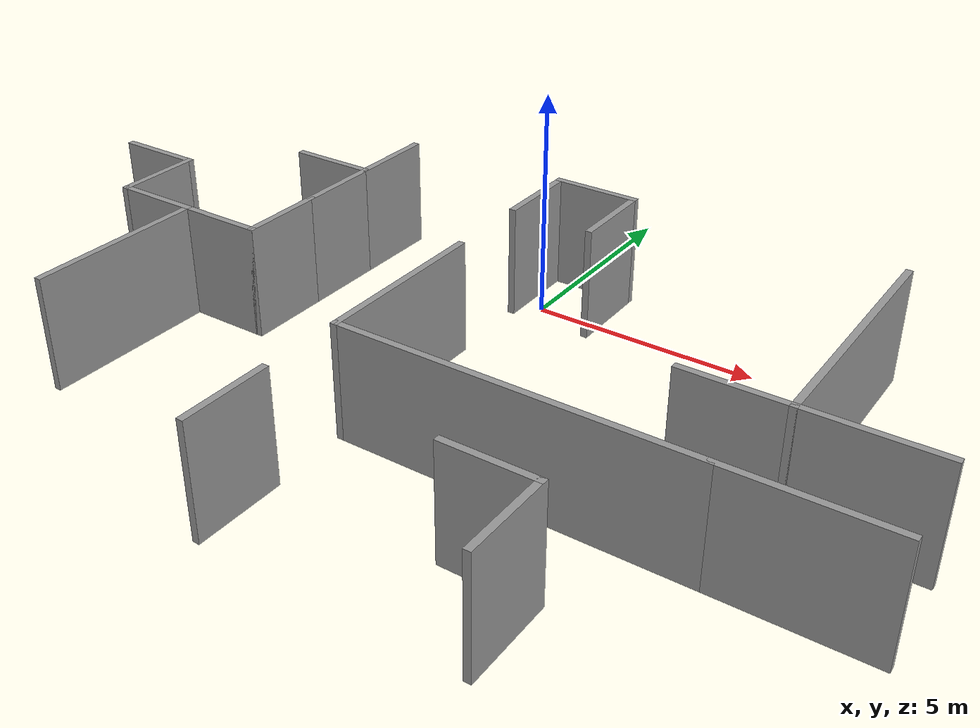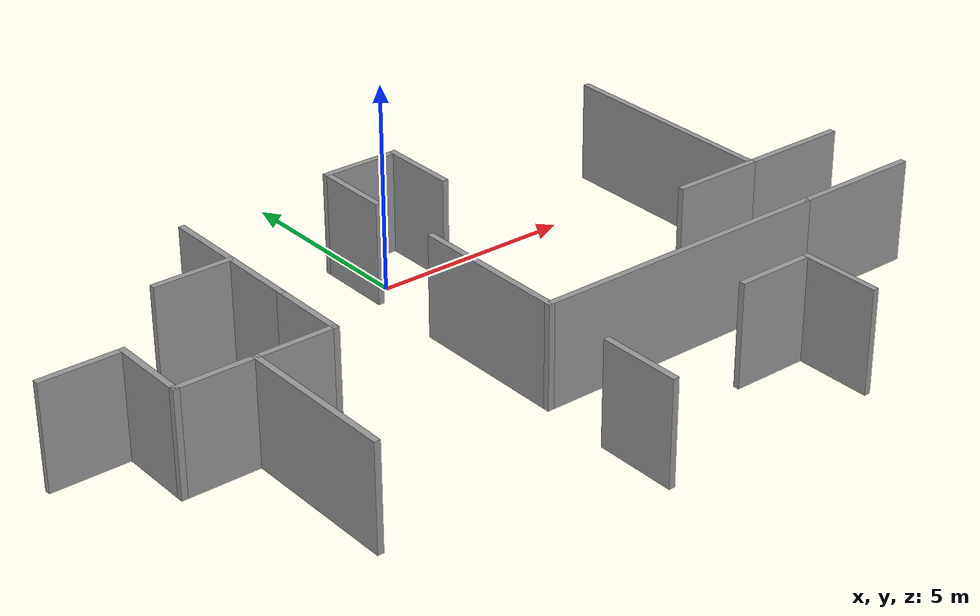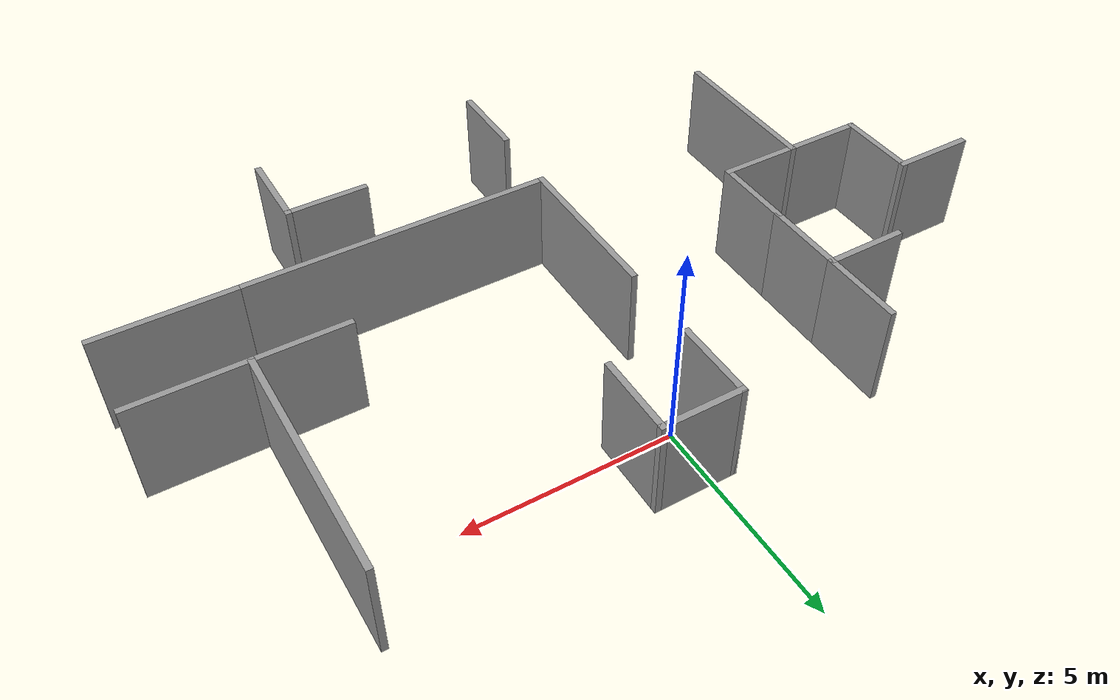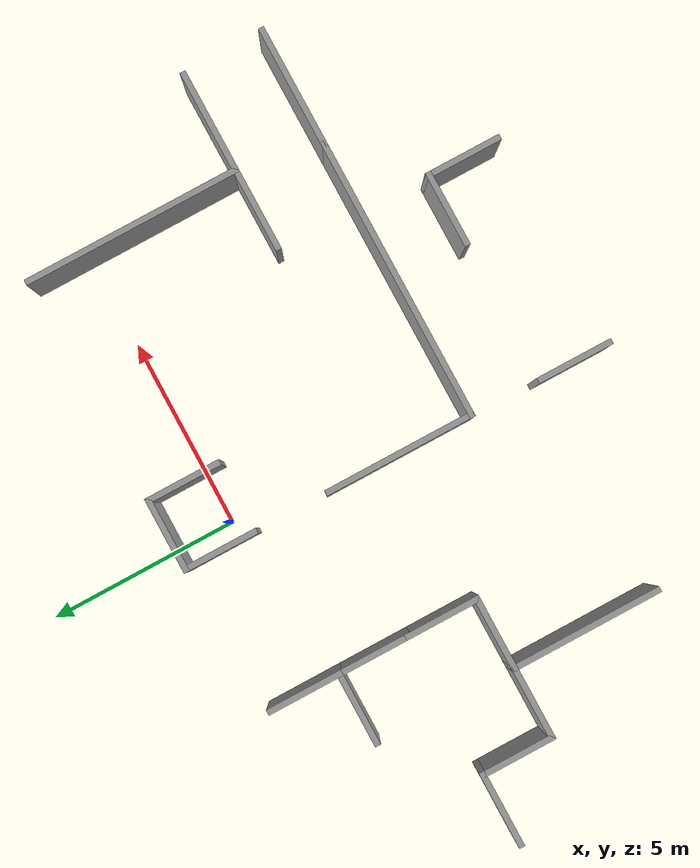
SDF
<sdf version="1.6">
 <model name="maze_new">
  <link name="Wall_11">
   <pose>-6.25 -6.22653 0 0 -0 1.5708</pose>
   <visual name="Wall_11_Visual">
    <pose>0 0 1.25 0 -0 0</pose>
    <geometry><box><size>4 0.15 2.5</size></box></geometry>
    <material>
     <script><uri>file://media/materials/scripts/gazebo.material</uri><name>Gazebo/Grey</name></script>
     <ambient>1 1 1 1</ambient>
     <diffuse>0.7 0.7 0.7 1</diffuse>
     <specular>0.01 0.01 0.01 1</specular>
     <emissive>0 0 0 1</emissive>
    </material>
   </visual>
   <collision name="Wall_11_Collision">
    <pose>0 0 1.25 0 -0 0</pose>
    <geometry><box><size>4 0.15 2.5</size></box></geometry>
    <surface>
     <friction>
      <ode><mu>1</mu><mu2>1</mu2><fdir1>0 0 0</fdir1><slip1>0</slip1><slip2>0</slip2></ode>
      <torsional>
       <coefficient>1</coefficient>
       <patch_radius>0</patch_radius>
       <surface_radius>0</surface_radius>
       <use_patch_radius>1</use_patch_radius>
       <ode><slip>0</slip></ode>
      </torsional>
     </friction>
     <bounce><restitution_coefficient>0</restitution_coefficient><threshold>1e+06</threshold></bounce>
     <contact>
      <collide_without_contact>0</collide_without_contact>
      <collide_without_contact_bitmask>1</collide_without_contact_bitmask>
      <collide_bitmask>1</collide_bitmask>
      <ode>
       <soft_cfm>0</soft_cfm>
       <soft_erp>0.2</soft_erp>
       <kp>1e+13</kp>
       <kd>1</kd>
       <max_vel>0.01</max_vel>
       <min_depth>0</min_depth>
      </ode>
      <bullet>
       <split_impulse>1</split_impulse>
       <split_impulse_penetration_threshold>-0.01</split_impulse_penetration_threshold>
       <soft_cfm>0</soft_cfm>
       <soft_erp>0.2</soft_erp>
       <kp>1e+13</kp>
       <kd>1</kd>
      </bullet>
     </contact>
    </surface>
   </collision>
  </link>
  <link name="Wall_125">
   <pose>6.25 -4.1229 0 0 -0 0</pose>
   <visual name="Wall_125_Visual">
    <pose>0 0 1.25 0 -0 0</pose>
    <geometry><box><size>2.25 0.15 2.5</size></box></geometry>
    <material>
     <script><uri>file://media/materials/scripts/gazebo.material</uri><name>Gazebo/Grey</name></script>
     <ambient>1 1 1 1</ambient>
     <diffuse>0.7 0.7 0.7 1</diffuse>
     <specular>0.01 0.01 0.01 1</specular>
     <emissive>0 0 0 1</emissive>
    </material>
   </visual>
   <collision name="Wall_125_Collision">
    <pose>0 0 1.25 0 -0 0</pose>
    <geometry><box><size>2.25 0.15 2.5</size></box></geometry>
    <surface>
     <friction>
      <ode><mu>1</mu><mu2>1</mu2><fdir1>0 0 0</fdir1><slip1>0</slip1><slip2>0</slip2></ode>
      <torsional>
       <coefficient>1</coefficient>
       <patch_radius>0</patch_radius>
       <surface_radius>0</surface_radius>
       <use_patch_radius>1</use_patch_radius>
       <ode><slip>0</slip></ode>
      </torsional>
     </friction>
     <bounce><restitution_coefficient>0</restitution_coefficient><threshold>1e+06</threshold></bounce>
     <contact>
      <collide_without_contact>0</collide_without_contact>
      <collide_without_contact_bitmask>1</collide_without_contact_bitmask>
      <collide_bitmask>1</collide_bitmask>
      <ode>
       <soft_cfm>0</soft_cfm>
       <soft_erp>0.2</soft_erp>
       <kp>1e+13</kp>
       <kd>1</kd>
       <max_vel>0.01</max_vel>
       <min_depth>0</min_depth>
      </ode>
      <bullet>
       <split_impulse>1</split_impulse>
       <split_impulse_penetration_threshold>-0.01</split_impulse_penetration_threshold>
       <soft_cfm>0</soft_cfm>
       <soft_erp>0.2</soft_erp>
       <kp>1e+13</kp>
       <kd>1</kd>
      </bullet>
     </contact>
    </surface>
   </collision>
  </link>
  <link name="Wall_126">
   <pose>7.3 -1.3229 0 0 -0 1.5708</pose>
   <visual name="Wall_126_Visual">
    <pose>0 0 1.25 0 -0 0</pose>
    <geometry><box><size>5.75 0.15 2.5</size></box></geometry>
    <material>
     <script><uri>file://media/materials/scripts/gazebo.material</uri><name>Gazebo/Grey</name></script>
     <ambient>1 1 1 1</ambient>
     <diffuse>0.7 0.7 0.7 1</diffuse>
     <specular>0.01 0.01 0.01 1</specular>
     <emissive>0 0 0 1</emissive>
    </material>
   </visual>
   <collision name="Wall_126_Collision">
    <pose>0 0 1.25 0 -0 0</pose>
    <geometry><box><size>5.75 0.15 2.5</size></box></geometry>
    <surface>
     <friction>
      <ode><mu>1</mu><mu2>1</mu2><fdir1>0 0 0</fdir1><slip1>0</slip1><slip2>0</slip2></ode>
      <torsional>
       <coefficient>1</coefficient>
       <patch_radius>0</patch_radius>
       <surface_radius>0</surface_radius>
       <use_patch_radius>1</use_patch_radius>
       <ode><slip>0</slip></ode>
      </torsional>
     </friction>
     <bounce><restitution_coefficient>0</restitution_coefficient><threshold>1e+06</threshold></bounce>
     <contact>
      <collide_without_contact>0</collide_without_contact>
      <collide_without_contact_bitmask>1</collide_without_contact_bitmask>
      <collide_bitmask>1</collide_bitmask>
      <ode>
       <soft_cfm>0</soft_cfm>
       <soft_erp>0.2</soft_erp>
       <kp>1e+13</kp>
       <kd>1</kd>
       <max_vel>0.01</max_vel>
       <min_depth>0</min_depth>
      </ode>
      <bullet>
       <split_impulse>1</split_impulse>
       <split_impulse_penetration_threshold>-0.01</split_impulse_penetration_threshold>
       <soft_cfm>0</soft_cfm>
       <soft_erp>0.2</soft_erp>
       <kp>1e+13</kp>
       <kd>1</kd>
      </bullet>
     </contact>
    </surface>
   </collision>
  </link>
  <link name="Wall_128">
   <pose>8.6 -4.1229 0 0 -0 0</pose>
   <visual name="Wall_128_Visual">
    <pose>0 0 1.25 0 -0 0</pose>
    <geometry><box><size>2.75 0.15 2.5</size></box></geometry>
    <material>
     <script><uri>file://media/materials/scripts/gazebo.material</uri><name>Gazebo/Grey</name></script>
     <ambient>1 1 1 1</ambient>
     <diffuse>0.7 0.7 0.7 1</diffuse>
     <specular>0.01 0.01 0.01 1</specular>
     <emissive>0 0 0 1</emissive>
    </material>
   </visual>
   <collision name="Wall_128_Collision">
    <pose>0 0 1.25 0 -0 0</pose>
    <geometry><box><size>2.75 0.15 2.5</size></box></geometry>
    <surface>
     <friction>
      <ode><mu>1</mu><mu2>1</mu2><fdir1>0 0 0</fdir1><slip1>0</slip1><slip2>0</slip2></ode>
      <torsional>
       <coefficient>1</coefficient>
       <patch_radius>0</patch_radius>
       <surface_radius>0</surface_radius>
       <use_patch_radius>1</use_patch_radius>
       <ode><slip>0</slip></ode>
      </torsional>
     </friction>
     <bounce><restitution_coefficient>0</restitution_coefficient><threshold>1e+06</threshold></bounce>
     <contact>
      <collide_without_contact>0</collide_without_contact>
      <collide_without_contact_bitmask>1</collide_without_contact_bitmask>
      <collide_bitmask>1</collide_bitmask>
      <ode>
       <soft_cfm>0</soft_cfm>
       <soft_erp>0.2</soft_erp>
       <kp>1e+13</kp>
       <kd>1</kd>
       <max_vel>0.01</max_vel>
       <min_depth>0</min_depth>
      </ode>
      <bullet>
       <split_impulse>1</split_impulse>
       <split_impulse_penetration_threshold>-0.01</split_impulse_penetration_threshold>
       <soft_cfm>0</soft_cfm>
       <soft_erp>0.2</soft_erp>
       <kp>1e+13</kp>
       <kd>1</kd>
      </bullet>
     </contact>
    </surface>
   </collision>
  </link>
  <link name="Wall_13">
   <pose>-7.175 -4.30153 0 0 -0 3.14159</pose>
   <visual name="Wall_13_Visual">
    <pose>0 0 1.25 0 -0 0</pose>
    <geometry><box><size>2 0.15 2.5</size></box></geometry>
    <material>
     <script><uri>file://media/materials/scripts/gazebo.material</uri><name>Gazebo/Grey</name></script>
     <ambient>1 1 1 1</ambient>
     <diffuse>0.7 0.7 0.7 1</diffuse>
     <specular>0.01 0.01 0.01 1</specular>
     <emissive>0 0 0 1</emissive>
    </material>
   </visual>
   <collision name="Wall_13_Collision">
    <pose>0 0 1.25 0 -0 0</pose>
    <geometry><box><size>2 0.15 2.5</size></box></geometry>
    <surface>
     <friction>
      <ode><mu>1</mu><mu2>1</mu2><fdir1>0 0 0</fdir1><slip1>0</slip1><slip2>0</slip2></ode>
      <torsional>
       <coefficient>1</coefficient>
       <patch_radius>0</patch_radius>
       <surface_radius>0</surface_radius>
       <use_patch_radius>1</use_patch_radius>
       <ode><slip>0</slip></ode>
      </torsional>
     </friction>
     <bounce><restitution_coefficient>0</restitution_coefficient><threshold>1e+06</threshold></bounce>
     <contact>
      <collide_without_contact>0</collide_without_contact>
      <collide_without_contact_bitmask>1</collide_without_contact_bitmask>
      <collide_bitmask>1</collide_bitmask>
      <ode>
       <soft_cfm>0</soft_cfm>
       <soft_erp>0.2</soft_erp>
       <kp>1e+13</kp>
       <kd>1</kd>
       <max_vel>0.01</max_vel>
       <min_depth>0</min_depth>
      </ode>
      <bullet>
       <split_impulse>1</split_impulse>
       <split_impulse_penetration_threshold>-0.01</split_impulse_penetration_threshold>
       <soft_cfm>0</soft_cfm>
       <soft_erp>0.2</soft_erp>
       <kp>1e+13</kp>
       <kd>1</kd>
      </bullet>
     </contact>
    </surface>
   </collision>
  </link>
  <link name="Wall_14">
   <pose>-8.1 -3.37653 0 0 -0 1.5708</pose>
   <visual name="Wall_14_Visual">
    <pose>0 0 1.25 0 -0 0</pose>
    <geometry><box><size>2 0.15 2.5</size></box></geometry>
    <material>
     <script><uri>file://media/materials/scripts/gazebo.material</uri><name>Gazebo/Grey</name></script>
     <ambient>1 1 1 1</ambient>
     <diffuse>0.7 0.7 0.7 1</diffuse>
     <specular>0.01 0.01 0.01 1</specular>
     <emissive>0 0 0 1</emissive>
    </material>
   </visual>
   <collision name="Wall_14_Collision">
    <pose>0 0 1.25 0 -0 0</pose>
    <geometry><box><size>2 0.15 2.5</size></box></geometry>
    <surface>
     <friction>
      <ode><mu>1</mu><mu2>1</mu2><fdir1>0 0 0</fdir1><slip1>0</slip1><slip2>0</slip2></ode>
      <torsional>
       <coefficient>1</coefficient>
       <patch_radius>0</patch_radius>
       <surface_radius>0</surface_radius>
       <use_patch_radius>1</use_patch_radius>
       <ode><slip>0</slip></ode>
      </torsional>
     </friction>
     <bounce><restitution_coefficient>0</restitution_coefficient><threshold>1e+06</threshold></bounce>
     <contact>
      <collide_without_contact>0</collide_without_contact>
      <collide_without_contact_bitmask>1</collide_without_contact_bitmask>
      <collide_bitmask>1</collide_bitmask>
      <ode>
       <soft_cfm>0</soft_cfm>
       <soft_erp>0.2</soft_erp>
       <kp>1e+13</kp>
       <kd>1</kd>
       <max_vel>0.01</max_vel>
       <min_depth>0</min_depth>
      </ode>
      <bullet>
       <split_impulse>1</split_impulse>
       <split_impulse_penetration_threshold>-0.01</split_impulse_penetration_threshold>
       <soft_cfm>0</soft_cfm>
       <soft_erp>0.2</soft_erp>
       <kp>1e+13</kp>
       <kd>1</kd>
      </bullet>
     </contact>
    </surface>
   </collision>
  </link>
  <link name="Wall_15">
   <pose>-9.025 -2.45153 0 0 -0 3.14159</pose>
   <visual name="Wall_15_Visual">
    <pose>0 0 1.25 0 -0 0</pose>
    <geometry><box><size>2 0.15 2.5</size></box></geometry>
    <material>
     <script><uri>file://media/materials/scripts/gazebo.material</uri><name>Gazebo/Grey</name></script>
     <ambient>1 1 1 1</ambient>
     <diffuse>0.7 0.7 0.7 1</diffuse>
     <specular>0.01 0.01 0.01 1</specular>
     <emissive>0 0 0 1</emissive>
    </material>
   </visual>
   <collision name="Wall_15_Collision">
    <pose>0 0 1.25 0 -0 0</pose>
    <geometry><box><size>2 0.15 2.5</size></box></geometry>
    <surface>
     <friction>
      <ode><mu>1</mu><mu2>1</mu2><fdir1>0 0 0</fdir1><slip1>0</slip1><slip2>0</slip2></ode>
      <torsional>
       <coefficient>1</coefficient>
       <patch_radius>0</patch_radius>
       <surface_radius>0</surface_radius>
       <use_patch_radius>1</use_patch_radius>
       <ode><slip>0</slip></ode>
      </torsional>
     </friction>
     <bounce><restitution_coefficient>0</restitution_coefficient><threshold>1e+06</threshold></bounce>
     <contact>
      <collide_without_contact>0</collide_without_contact>
      <collide_without_contact_bitmask>1</collide_without_contact_bitmask>
      <collide_bitmask>1</collide_bitmask>
      <ode>
       <soft_cfm>0</soft_cfm>
       <soft_erp>0.2</soft_erp>
       <kp>1e+13</kp>
       <kd>1</kd>
       <max_vel>0.01</max_vel>
       <min_depth>0</min_depth>
      </ode>
      <bullet>
       <split_impulse>1</split_impulse>
       <split_impulse_penetration_threshold>-0.01</split_impulse_penetration_threshold>
       <soft_cfm>0</soft_cfm>
       <soft_erp>0.2</soft_erp>
       <kp>1e+13</kp>
       <kd>1</kd>
      </bullet>
     </contact>
    </surface>
   </collision>
  </link>
  <link name="Wall_19">
   <pose>-5.325 -4.30153 0 0 -0 0</pose>
   <visual name="Wall_19_Visual">
    <pose>0 0 1.25 0 -0 0</pose>
    <geometry><box><size>2 0.15 2.5</size></box></geometry>
    <material>
     <script><uri>file://media/materials/scripts/gazebo.material</uri><name>Gazebo/Grey</name></script>
     <ambient>1 1 1 1</ambient>
     <diffuse>0.7 0.7 0.7 1</diffuse>
     <specular>0.01 0.01 0.01 1</specular>
     <emissive>0 0 0 1</emissive>
    </material>
   </visual>
   <collision name="Wall_19_Collision">
    <pose>0 0 1.25 0 -0 0</pose>
    <geometry><box><size>2 0.15 2.5</size></box></geometry>
    <surface>
     <friction>
      <ode><mu>1</mu><mu2>1</mu2><fdir1>0 0 0</fdir1><slip1>0</slip1><slip2>0</slip2></ode>
      <torsional>
       <coefficient>1</coefficient>
       <patch_radius>0</patch_radius>
       <surface_radius>0</surface_radius>
       <use_patch_radius>1</use_patch_radius>
       <ode><slip>0</slip></ode>
      </torsional>
     </friction>
     <bounce><restitution_coefficient>0</restitution_coefficient><threshold>1e+06</threshold></bounce>
     <contact>
      <collide_without_contact>0</collide_without_contact>
      <collide_without_contact_bitmask>1</collide_without_contact_bitmask>
      <collide_bitmask>1</collide_bitmask>
      <ode>
       <soft_cfm>0</soft_cfm>
       <soft_erp>0.2</soft_erp>
       <kp>1e+13</kp>
       <kd>1</kd>
       <max_vel>0.01</max_vel>
       <min_depth>0</min_depth>
      </ode>
      <bullet>
       <split_impulse>1</split_impulse>
       <split_impulse_penetration_threshold>-0.01</split_impulse_penetration_threshold>
       <soft_cfm>0</soft_cfm>
       <soft_erp>0.2</soft_erp>
       <kp>1e+13</kp>
       <kd>1</kd>
      </bullet>
     </contact>
    </surface>
   </collision>
  </link>
  <link name="Wall_20">
   <pose>-4.4 -3.37653 0 0 -0 1.5708</pose>
   <visual name="Wall_20_Visual">
    <pose>0 0 1.25 0 -0 0</pose>
    <geometry><box><size>2 0.15 2.5</size></box></geometry>
    <material>
     <script><uri>file://media/materials/scripts/gazebo.material</uri><name>Gazebo/Grey</name></script>
     <ambient>1 1 1 1</ambient>
     <diffuse>0.7 0.7 0.7 1</diffuse>
     <specular>0.01 0.01 0.01 1</specular>
     <emissive>0 0 0 1</emissive>
    </material>
   </visual>
   <collision name="Wall_20_Collision">
    <pose>0 0 1.25 0 -0 0</pose>
    <geometry><box><size>2 0.15 2.5</size></box></geometry>
    <surface>
     <friction>
      <ode><mu>1</mu><mu2>1</mu2><fdir1>0 0 0</fdir1><slip1>0</slip1><slip2>0</slip2></ode>
      <torsional>
       <coefficient>1</coefficient>
       <patch_radius>0</patch_radius>
       <surface_radius>0</surface_radius>
       <use_patch_radius>1</use_patch_radius>
       <ode><slip>0</slip></ode>
      </torsional>
     </friction>
     <bounce><restitution_coefficient>0</restitution_coefficient><threshold>1e+06</threshold></bounce>
     <contact>
      <collide_without_contact>0</collide_without_contact>
      <collide_without_contact_bitmask>1</collide_without_contact_bitmask>
      <collide_bitmask>1</collide_bitmask>
      <ode>
       <soft_cfm>0</soft_cfm>
       <soft_erp>0.2</soft_erp>
       <kp>1e+13</kp>
       <kd>1</kd>
       <max_vel>0.01</max_vel>
       <min_depth>0</min_depth>
      </ode>
      <bullet>
       <split_impulse>1</split_impulse>
       <split_impulse_penetration_threshold>-0.01</split_impulse_penetration_threshold>
       <soft_cfm>0</soft_cfm>
       <soft_erp>0.2</soft_erp>
       <kp>1e+13</kp>
       <kd>1</kd>
      </bullet>
     </contact>
    </surface>
   </collision>
  </link>
  <link name="Wall_28">
   <pose>-0.55 -9.0479 0 0 0 -1.5708</pose>
   <visual name="Wall_28_Visual">
    <pose>0 0 1.25 0 -0 0</pose>
    <geometry><box><size>2 0.15 2.5</size></box></geometry>
    <material>
     <script><uri>file://media/materials/scripts/gazebo.material</uri><name>Gazebo/Grey</name></script>
     <ambient>1 1 1 1</ambient>
     <diffuse>0.7 0.7 0.7 1</diffuse>
     <specular>0.01 0.01 0.01 1</specular>
     <emissive>0 0 0 1</emissive>
    </material>
   </visual>
   <collision name="Wall_28_Collision">
    <pose>0 0 1.25 0 -0 0</pose>
    <geometry><box><size>2 0.15 2.5</size></box></geometry>
    <surface>
     <friction>
      <ode><mu>1</mu><mu2>1</mu2><fdir1>0 0 0</fdir1><slip1>0</slip1><slip2>0</slip2></ode>
      <torsional>
       <coefficient>1</coefficient>
       <patch_radius>0</patch_radius>
       <surface_radius>0</surface_radius>
       <use_patch_radius>1</use_patch_radius>
       <ode><slip>0</slip></ode>
      </torsional>
     </friction>
     <bounce><restitution_coefficient>0</restitution_coefficient><threshold>1e+06</threshold></bounce>
     <contact>
      <collide_without_contact>0</collide_without_contact>
      <collide_without_contact_bitmask>1</collide_without_contact_bitmask>
      <collide_bitmask>1</collide_bitmask>
      <ode>
       <soft_cfm>0</soft_cfm>
       <soft_erp>0.2</soft_erp>
       <kp>1e+13</kp>
       <kd>1</kd>
       <max_vel>0.01</max_vel>
       <min_depth>0</min_depth>
      </ode>
      <bullet>
       <split_impulse>1</split_impulse>
       <split_impulse_penetration_threshold>-0.01</split_impulse_penetration_threshold>
       <soft_cfm>0</soft_cfm>
       <soft_erp>0.2</soft_erp>
       <kp>1e+13</kp>
       <kd>1</kd>
      </bullet>
     </contact>
    </surface>
   </collision>
  </link>
  <link name="Wall_38">
   <pose>-4.4 -1.52653 0 0 -0 1.5708</pose>
   <visual name="Wall_38_Visual">
    <pose>0 0 1.25 0 -0 0</pose>
    <geometry><box><size>2 0.15 2.5</size></box></geometry>
    <material>
     <script><uri>file://media/materials/scripts/gazebo.material</uri><name>Gazebo/Grey</name></script>
     <ambient>1 1 1 1</ambient>
     <diffuse>0.7 0.7 0.7 1</diffuse>
     <specular>0.01 0.01 0.01 1</specular>
     <emissive>0 0 0 1</emissive>
    </material>
   </visual>
   <collision name="Wall_38_Collision">
    <pose>0 0 1.25 0 -0 0</pose>
    <geometry><box><size>2 0.15 2.5</size></box></geometry>
    <surface>
     <friction>
      <ode><mu>1</mu><mu2>1</mu2><fdir1>0 0 0</fdir1><slip1>0</slip1><slip2>0</slip2></ode>
      <torsional>
       <coefficient>1</coefficient>
       <patch_radius>0</patch_radius>
       <surface_radius>0</surface_radius>
       <use_patch_radius>1</use_patch_radius>
       <ode><slip>0</slip></ode>
      </torsional>
     </friction>
     <bounce><restitution_coefficient>0</restitution_coefficient><threshold>1e+06</threshold></bounce>
     <contact>
      <collide_without_contact>0</collide_without_contact>
      <collide_without_contact_bitmask>1</collide_without_contact_bitmask>
      <collide_bitmask>1</collide_bitmask>
      <ode>
       <soft_cfm>0</soft_cfm>
       <soft_erp>0.2</soft_erp>
       <kp>1e+13</kp>
       <kd>1</kd>
       <max_vel>0.01</max_vel>
       <min_depth>0</min_depth>
      </ode>
      <bullet>
       <split_impulse>1</split_impulse>
       <split_impulse_penetration_threshold>-0.01</split_impulse_penetration_threshold>
       <soft_cfm>0</soft_cfm>
       <soft_erp>0.2</soft_erp>
       <kp>1e+13</kp>
       <kd>1</kd>
      </bullet>
     </contact>
    </surface>
   </collision>
  </link>
  <link name="Wall_40">
   <pose>-4.4 0.32347 0 0 -0 1.5708</pose>
   <visual name="Wall_40_Visual">
    <pose>0 0 1.25 0 -0 0</pose>
    <geometry><box><size>2 0.15 2.5</size></box></geometry>
    <material>
     <script><uri>file://media/materials/scripts/gazebo.material</uri><name>Gazebo/Grey</name></script>
     <ambient>1 1 1 1</ambient>
     <diffuse>0.7 0.7 0.7 1</diffuse>
     <specular>0.01 0.01 0.01 1</specular>
     <emissive>0 0 0 1</emissive>
    </material>
   </visual>
   <collision name="Wall_40_Collision">
    <pose>0 0 1.25 0 -0 0</pose>
    <geometry><box><size>2 0.15 2.5</size></box></geometry>
    <surface>
     <friction>
      <ode><mu>1</mu><mu2>1</mu2><fdir1>0 0 0</fdir1><slip1>0</slip1><slip2>0</slip2></ode>
      <torsional>
       <coefficient>1</coefficient>
       <patch_radius>0</patch_radius>
       <surface_radius>0</surface_radius>
       <use_patch_radius>1</use_patch_radius>
       <ode><slip>0</slip></ode>
      </torsional>
     </friction>
     <bounce><restitution_coefficient>0</restitution_coefficient><threshold>1e+06</threshold></bounce>
     <contact>
      <collide_without_contact>0</collide_without_contact>
      <collide_without_contact_bitmask>1</collide_without_contact_bitmask>
      <collide_bitmask>1</collide_bitmask>
      <ode>
       <soft_cfm>0</soft_cfm>
       <soft_erp>0.2</soft_erp>
       <kp>1e+13</kp>
       <kd>1</kd>
       <max_vel>0.01</max_vel>
       <min_depth>0</min_depth>
      </ode>
      <bullet>
       <split_impulse>1</split_impulse>
       <split_impulse_penetration_threshold>-0.01</split_impulse_penetration_threshold>
       <soft_cfm>0</soft_cfm>
       <soft_erp>0.2</soft_erp>
       <kp>1e+13</kp>
       <kd>1</kd>
      </bullet>
     </contact>
    </surface>
   </collision>
  </link>
  <link name="Wall_42">
   <pose>-5.325 -0.60153 0 0 -0 3.14159</pose>
   <visual name="Wall_42_Visual">
    <pose>0 0 1.25 0 -0 0</pose>
    <geometry><box><size>2 0.15 2.5</size></box></geometry>
    <material>
     <script><uri>file://media/materials/scripts/gazebo.material</uri><name>Gazebo/Grey</name></script>
     <ambient>1 1 1 1</ambient>
     <diffuse>0.7 0.7 0.7 1</diffuse>
     <specular>0.01 0.01 0.01 1</specular>
     <emissive>0 0 0 1</emissive>
    </material>
   </visual>
   <collision name="Wall_42_Collision">
    <pose>0 0 1.25 0 -0 0</pose>
    <geometry><box><size>2 0.15 2.5</size></box></geometry>
    <surface>
     <friction>
      <ode><mu>1</mu><mu2>1</mu2><fdir1>0 0 0</fdir1><slip1>0</slip1><slip2>0</slip2></ode>
      <torsional>
       <coefficient>1</coefficient>
       <patch_radius>0</patch_radius>
       <surface_radius>0</surface_radius>
       <use_patch_radius>1</use_patch_radius>
       <ode><slip>0</slip></ode>
      </torsional>
     </friction>
     <bounce><restitution_coefficient>0</restitution_coefficient><threshold>1e+06</threshold></bounce>
     <contact>
      <collide_without_contact>0</collide_without_contact>
      <collide_without_contact_bitmask>1</collide_without_contact_bitmask>
      <collide_bitmask>1</collide_bitmask>
      <ode>
       <soft_cfm>0</soft_cfm>
       <soft_erp>0.2</soft_erp>
       <kp>1e+13</kp>
       <kd>1</kd>
       <max_vel>0.01</max_vel>
       <min_depth>0</min_depth>
      </ode>
      <bullet>
       <split_impulse>1</split_impulse>
       <split_impulse_penetration_threshold>-0.01</split_impulse_penetration_threshold>
       <soft_cfm>0</soft_cfm>
       <soft_erp>0.2</soft_erp>
       <kp>1e+13</kp>
       <kd>1</kd>
      </bullet>
     </contact>
    </surface>
   </collision>
  </link>
  <link name="Wall_50">
   <pose>4.075 -8.1229 0 0 -0 0</pose>
   <visual name="Wall_50_Visual">
    <pose>0 0 1.25 0 -0 0</pose>
    <geometry><box><size>2 0.15 2.5</size></box></geometry>
    <material>
     <script><uri>file://media/materials/scripts/gazebo.material</uri><name>Gazebo/Grey</name></script>
     <ambient>1 1 1 1</ambient>
     <diffuse>0.7 0.7 0.7 1</diffuse>
     <specular>0.01 0.01 0.01 1</specular>
     <emissive>0 0 0 1</emissive>
    </material>
   </visual>
   <collision name="Wall_50_Collision">
    <pose>0 0 1.25 0 -0 0</pose>
    <geometry><box><size>2 0.15 2.5</size></box></geometry>
    <surface>
     <friction>
      <ode><mu>1</mu><mu2>1</mu2><fdir1>0 0 0</fdir1><slip1>0</slip1><slip2>0</slip2></ode>
      <torsional>
       <coefficient>1</coefficient>
       <patch_radius>0</patch_radius>
       <surface_radius>0</surface_radius>
       <use_patch_radius>1</use_patch_radius>
       <ode><slip>0</slip></ode>
      </torsional>
     </friction>
     <bounce><restitution_coefficient>0</restitution_coefficient><threshold>1e+06</threshold></bounce>
     <contact>
      <collide_without_contact>0</collide_without_contact>
      <collide_without_contact_bitmask>1</collide_without_contact_bitmask>
      <collide_bitmask>1</collide_bitmask>
      <ode>
       <soft_cfm>0</soft_cfm>
       <soft_erp>0.2</soft_erp>
       <kp>1e+13</kp>
       <kd>1</kd>
       <max_vel>0.01</max_vel>
       <min_depth>0</min_depth>
      </ode>
      <bullet>
       <split_impulse>1</split_impulse>
       <split_impulse_penetration_threshold>-0.01</split_impulse_penetration_threshold>
       <soft_cfm>0</soft_cfm>
       <soft_erp>0.2</soft_erp>
       <kp>1e+13</kp>
       <kd>1</kd>
      </bullet>
     </contact>
    </surface>
   </collision>
  </link>
  <link name="Wall_51">
   <pose>5 -9.0479 0 0 0 -1.5708</pose>
   <visual name="Wall_51_Visual">
    <pose>0 0 1.25 0 -0 0</pose>
    <geometry><box><size>2 0.15 2.5</size></box></geometry>
    <material>
     <script><uri>file://media/materials/scripts/gazebo.material</uri><name>Gazebo/Grey</name></script>
     <ambient>1 1 1 1</ambient>
     <diffuse>0.7 0.7 0.7 1</diffuse>
     <specular>0.01 0.01 0.01 1</specular>
     <emissive>0 0 0 1</emissive>
    </material>
   </visual>
   <collision name="Wall_51_Collision">
    <pose>0 0 1.25 0 -0 0</pose>
    <geometry><box><size>2 0.15 2.5</size></box></geometry>
    <surface>
     <friction>
      <ode><mu>1</mu><mu2>1</mu2><fdir1>0 0 0</fdir1><slip1>0</slip1><slip2>0</slip2></ode>
      <torsional>
       <coefficient>1</coefficient>
       <patch_radius>0</patch_radius>
       <surface_radius>0</surface_radius>
       <use_patch_radius>1</use_patch_radius>
       <ode><slip>0</slip></ode>
      </torsional>
     </friction>
     <bounce><restitution_coefficient>0</restitution_coefficient><threshold>1e+06</threshold></bounce>
     <contact>
      <collide_without_contact>0</collide_without_contact>
      <collide_without_contact_bitmask>1</collide_without_contact_bitmask>
      <collide_bitmask>1</collide_bitmask>
      <ode>
       <soft_cfm>0</soft_cfm>
       <soft_erp>0.2</soft_erp>
       <kp>1e+13</kp>
       <kd>1</kd>
       <max_vel>0.01</max_vel>
       <min_depth>0</min_depth>
      </ode>
      <bullet>
       <split_impulse>1</split_impulse>
       <split_impulse_penetration_threshold>-0.01</split_impulse_penetration_threshold>
       <soft_cfm>0</soft_cfm>
       <soft_erp>0.2</soft_erp>
       <kp>1e+13</kp>
       <kd>1</kd>
      </bullet>
     </contact>
    </surface>
   </collision>
  </link>
  <link name="Wall_59">
   <pose>8.4 -6.2729 0 0 -0 0</pose>
   <visual name="Wall_59_Visual">
    <pose>0 0 1.25 0 -0 0</pose>
    <geometry><box><size>3.25 0.15 2.5</size></box></geometry>
    <material>
     <script><uri>file://media/materials/scripts/gazebo.material</uri><name>Gazebo/Grey</name></script>
     <ambient>1 1 1 1</ambient>
     <diffuse>0.7 0.7 0.7 1</diffuse>
     <specular>0.01 0.01 0.01 1</specular>
     <emissive>0 0 0 1</emissive>
    </material>
   </visual>
   <collision name="Wall_59_Collision">
    <pose>0 0 1.25 0 -0 0</pose>
    <geometry><box><size>3.25 0.15 2.5</size></box></geometry>
    <surface>
     <friction>
      <ode><mu>1</mu><mu2>1</mu2><fdir1>0 0 0</fdir1><slip1>0</slip1><slip2>0</slip2></ode>
      <torsional>
       <coefficient>1</coefficient>
       <patch_radius>0</patch_radius>
       <surface_radius>0</surface_radius>
       <use_patch_radius>1</use_patch_radius>
       <ode><slip>0</slip></ode>
      </torsional>
     </friction>
     <bounce><restitution_coefficient>0</restitution_coefficient><threshold>1e+06</threshold></bounce>
     <contact>
      <collide_without_contact>0</collide_without_contact>
      <collide_without_contact_bitmask>1</collide_without_contact_bitmask>
      <collide_bitmask>1</collide_bitmask>
      <ode>
       <soft_cfm>0</soft_cfm>
       <soft_erp>0.2</soft_erp>
       <kp>1e+13</kp>
       <kd>1</kd>
       <max_vel>0.01</max_vel>
       <min_depth>0</min_depth>
      </ode>
      <bullet>
       <split_impulse>1</split_impulse>
       <split_impulse_penetration_threshold>-0.01</split_impulse_penetration_threshold>
       <soft_cfm>0</soft_cfm>
       <soft_erp>0.2</soft_erp>
       <kp>1e+13</kp>
       <kd>1</kd>
      </bullet>
     </contact>
    </surface>
   </collision>
  </link>
  <link name="Wall_61">
   <pose>3.175 -6.2729 0 0 -0 3.14159</pose>
   <visual name="Wall_61_Visual">
    <pose>0 0 1.25 0 -0 0</pose>
    <geometry><box><size>7.5 0.15 2.5</size></box></geometry>
    <material>
     <script><uri>file://media/materials/scripts/gazebo.material</uri><name>Gazebo/Grey</name></script>
     <ambient>1 1 1 1</ambient>
     <diffuse>0.7 0.7 0.7 1</diffuse>
     <specular>0.01 0.01 0.01 1</specular>
     <emissive>0 0 0 1</emissive>
    </material>
   </visual>
   <collision name="Wall_61_Collision">
    <pose>0 0 1.25 0 -0 0</pose>
    <geometry><box><size>7.5 0.15 2.5</size></box></geometry>
    <surface>
     <friction>
      <ode><mu>1</mu><mu2>1</mu2><fdir1>0 0 0</fdir1><slip1>0</slip1><slip2>0</slip2></ode>
      <torsional>
       <coefficient>1</coefficient>
       <patch_radius>0</patch_radius>
       <surface_radius>0</surface_radius>
       <use_patch_radius>1</use_patch_radius>
       <ode><slip>0</slip></ode>
      </torsional>
     </friction>
     <bounce><restitution_coefficient>0</restitution_coefficient><threshold>1e+06</threshold></bounce>
     <contact>
      <collide_without_contact>0</collide_without_contact>
      <collide_without_contact_bitmask>1</collide_without_contact_bitmask>
      <collide_bitmask>1</collide_bitmask>
      <ode>
       <soft_cfm>0</soft_cfm>
       <soft_erp>0.2</soft_erp>
       <kp>1e+13</kp>
       <kd>1</kd>
       <max_vel>0.01</max_vel>
       <min_depth>0</min_depth>
      </ode>
      <bullet>
       <split_impulse>1</split_impulse>
       <split_impulse_penetration_threshold>-0.01</split_impulse_penetration_threshold>
       <soft_cfm>0</soft_cfm>
       <soft_erp>0.2</soft_erp>
       <kp>1e+13</kp>
       <kd>1</kd>
      </bullet>
     </contact>
    </surface>
   </collision>
  </link>
  <link name="Wall_63">
   <pose>-0.5 -4.3479 0 0 -0 1.5708</pose>
   <visual name="Wall_63_Visual">
    <pose>0 0 1.25 0 -0 0</pose>
    <geometry><box><size>4 0.15 2.5</size></box></geometry>
    <material>
     <script><uri>file://media/materials/scripts/gazebo.material</uri><name>Gazebo/Grey</name></script>
     <ambient>1 1 1 1</ambient>
     <diffuse>0.7 0.7 0.7 1</diffuse>
     <specular>0.01 0.01 0.01 1</specular>
     <emissive>0 0 0 1</emissive>
    </material>
   </visual>
   <collision name="Wall_63_Collision">
    <pose>0 0 1.25 0 -0 0</pose>
    <geometry><box><size>4 0.15 2.5</size></box></geometry>
    <surface>
     <friction>
      <ode><mu>1</mu><mu2>1</mu2><fdir1>0 0 0</fdir1><slip1>0</slip1><slip2>0</slip2></ode>
      <torsional>
       <coefficient>1</coefficient>
       <patch_radius>0</patch_radius>
       <surface_radius>0</surface_radius>
       <use_patch_radius>1</use_patch_radius>
       <ode><slip>0</slip></ode>
      </torsional>
     </friction>
     <bounce><restitution_coefficient>0</restitution_coefficient><threshold>1e+06</threshold></bounce>
     <contact>
      <collide_without_contact>0</collide_without_contact>
      <collide_without_contact_bitmask>1</collide_without_contact_bitmask>
      <collide_bitmask>1</collide_bitmask>
      <ode>
       <soft_cfm>0</soft_cfm>
       <soft_erp>0.2</soft_erp>
       <kp>1e+13</kp>
       <kd>1</kd>
       <max_vel>0.01</max_vel>
       <min_depth>0</min_depth>
      </ode>
      <bullet>
       <split_impulse>1</split_impulse>
       <split_impulse_penetration_threshold>-0.01</split_impulse_penetration_threshold>
       <soft_cfm>0</soft_cfm>
       <soft_erp>0.2</soft_erp>
       <kp>1e+13</kp>
       <kd>1</kd>
      </bullet>
     </contact>
    </surface>
   </collision>
  </link>
  <link name="Wall_71">
   <pose>1.35 0.502103 0 0 -0 1.5708</pose>
   <visual name="Wall_71_Visual">
    <pose>0 0 1.25 0 -0 0</pose>
    <geometry><box><size>2 0.15 2.5</size></box></geometry>
    <material>
     <script><uri>file://media/materials/scripts/gazebo.material</uri><name>Gazebo/Grey</name></script>
     <ambient>1 1 1 1</ambient>
     <diffuse>0.7 0.7 0.7 1</diffuse>
     <specular>0.01 0.01 0.01 1</specular>
     <emissive>0 0 0 1</emissive>
    </material>
   </visual>
   <collision name="Wall_71_Collision">
    <pose>0 0 1.25 0 -0 0</pose>
    <geometry><box><size>2 0.15 2.5</size></box></geometry>
    <surface>
     <friction>
      <ode><mu>1</mu><mu2>1</mu2><fdir1>0 0 0</fdir1><slip1>0</slip1><slip2>0</slip2></ode>
      <torsional>
       <coefficient>1</coefficient>
       <patch_radius>0</patch_radius>
       <surface_radius>0</surface_radius>
       <use_patch_radius>1</use_patch_radius>
       <ode><slip>0</slip></ode>
      </torsional>
     </friction>
     <bounce><restitution_coefficient>0</restitution_coefficient><threshold>1e+06</threshold></bounce>
     <contact>
      <collide_without_contact>0</collide_without_contact>
      <collide_without_contact_bitmask>1</collide_without_contact_bitmask>
      <collide_bitmask>1</collide_bitmask>
      <ode>
       <soft_cfm>0</soft_cfm>
       <soft_erp>0.2</soft_erp>
       <kp>1e+13</kp>
       <kd>1</kd>
       <max_vel>0.01</max_vel>
       <min_depth>0</min_depth>
      </ode>
      <bullet>
       <split_impulse>1</split_impulse>
       <split_impulse_penetration_threshold>-0.01</split_impulse_penetration_threshold>
       <soft_cfm>0</soft_cfm>
       <soft_erp>0.2</soft_erp>
       <kp>1e+13</kp>
       <kd>1</kd>
      </bullet>
     </contact>
    </surface>
   </collision>
  </link>
  <link name="Wall_72">
   <pose>0.425 1.4271 0 0 -0 3.14159</pose>
   <visual name="Wall_72_Visual">
    <pose>0 0 1.25 0 -0 0</pose>
    <geometry><box><size>2 0.15 2.5</size></box></geometry>
    <material>
     <script><uri>file://media/materials/scripts/gazebo.material</uri><name>Gazebo/Grey</name></script>
     <ambient>1 1 1 1</ambient>
     <diffuse>0.7 0.7 0.7 1</diffuse>
     <specular>0.01 0.01 0.01 1</specular>
     <emissive>0 0 0 1</emissive>
    </material>
   </visual>
   <collision name="Wall_72_Collision">
    <pose>0 0 1.25 0 -0 0</pose>
    <geometry><box><size>2 0.15 2.5</size></box></geometry>
    <surface>
     <friction>
      <ode><mu>1</mu><mu2>1</mu2><fdir1>0 0 0</fdir1><slip1>0</slip1><slip2>0</slip2></ode>
      <torsional>
       <coefficient>1</coefficient>
       <patch_radius>0</patch_radius>
       <surface_radius>0</surface_radius>
       <use_patch_radius>1</use_patch_radius>
       <ode><slip>0</slip></ode>
      </torsional>
     </friction>
     <bounce><restitution_coefficient>0</restitution_coefficient><threshold>1e+06</threshold></bounce>
     <contact>
      <collide_without_contact>0</collide_without_contact>
      <collide_without_contact_bitmask>1</collide_without_contact_bitmask>
      <collide_bitmask>1</collide_bitmask>
      <ode>
       <soft_cfm>0</soft_cfm>
       <soft_erp>0.2</soft_erp>
       <kp>1e+13</kp>
       <kd>1</kd>
       <max_vel>0.01</max_vel>
       <min_depth>0</min_depth>
      </ode>
      <bullet>
       <split_impulse>1</split_impulse>
       <split_impulse_penetration_threshold>-0.01</split_impulse_penetration_threshold>
       <soft_cfm>0</soft_cfm>
       <soft_erp>0.2</soft_erp>
       <kp>1e+13</kp>
       <kd>1</kd>
      </bullet>
     </contact>
    </surface>
   </collision>
  </link>
  <link name="Wall_74">
   <pose>-0.5 0.502103 0 0 0 -1.5708</pose>
   <visual name="Wall_74_Visual">
    <pose>0 0 1.25 0 -0 0</pose>
    <geometry><box><size>2 0.15 2.5</size></box></geometry>
    <material>
     <script><uri>file://media/materials/scripts/gazebo.material</uri><name>Gazebo/Grey</name></script>
     <ambient>1 1 1 1</ambient>
     <diffuse>0.7 0.7 0.7 1</diffuse>
     <specular>0.01 0.01 0.01 1</specular>
     <emissive>0 0 0 1</emissive>
    </material>
   </visual>
   <collision name="Wall_74_Collision">
    <pose>0 0 1.25 0 -0 0</pose>
    <geometry><box><size>2 0.15 2.5</size></box></geometry>
    <surface>
     <friction>
      <ode><mu>1</mu><mu2>1</mu2><fdir1>0 0 0</fdir1><slip1>0</slip1><slip2>0</slip2></ode>
      <torsional>
       <coefficient>1</coefficient>
       <patch_radius>0</patch_radius>
       <surface_radius>0</surface_radius>
       <use_patch_radius>1</use_patch_radius>
       <ode><slip>0</slip></ode>
      </torsional>
     </friction>
     <bounce><restitution_coefficient>0</restitution_coefficient><threshold>1e+06</threshold></bounce>
     <contact>
      <collide_without_contact>0</collide_without_contact>
      <collide_without_contact_bitmask>1</collide_without_contact_bitmask>
      <collide_bitmask>1</collide_bitmask>
      <ode>
       <soft_cfm>0</soft_cfm>
       <soft_erp>0.2</soft_erp>
       <kp>1e+13</kp>
       <kd>1</kd>
       <max_vel>0.01</max_vel>
       <min_depth>0</min_depth>
      </ode>
      <bullet>
       <split_impulse>1</split_impulse>
       <split_impulse_penetration_threshold>-0.01</split_impulse_penetration_threshold>
       <soft_cfm>0</soft_cfm>
       <soft_erp>0.2</soft_erp>
       <kp>1e+13</kp>
       <kd>1</kd>
      </bullet>
     </contact>
    </surface>
   </collision>
  </link>
  <static>1</static>
 </model>
</sdf>
